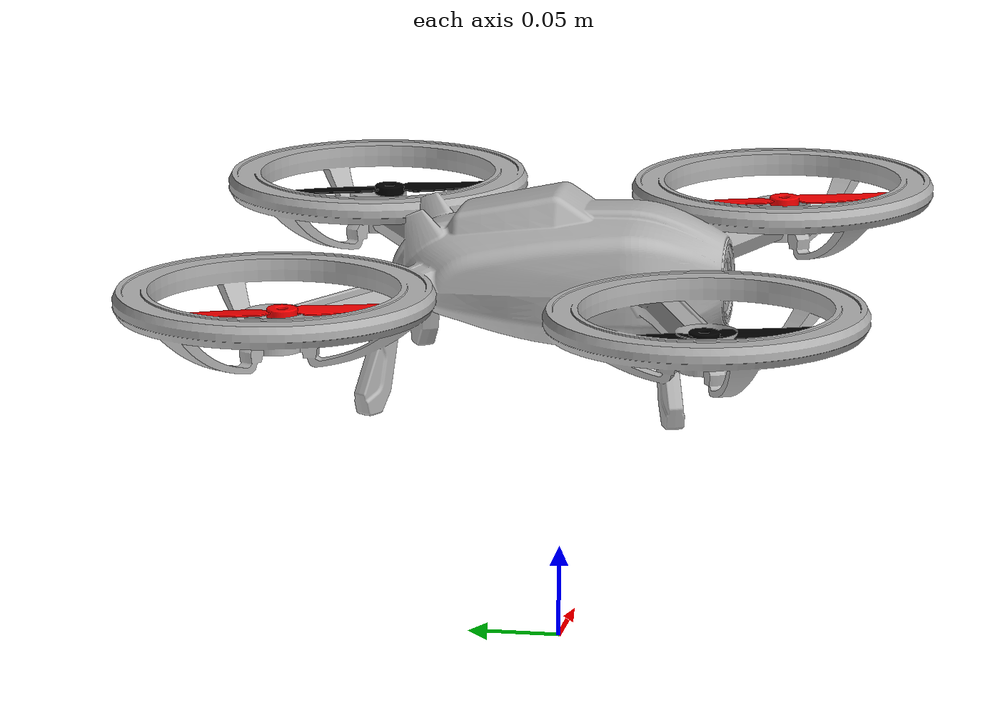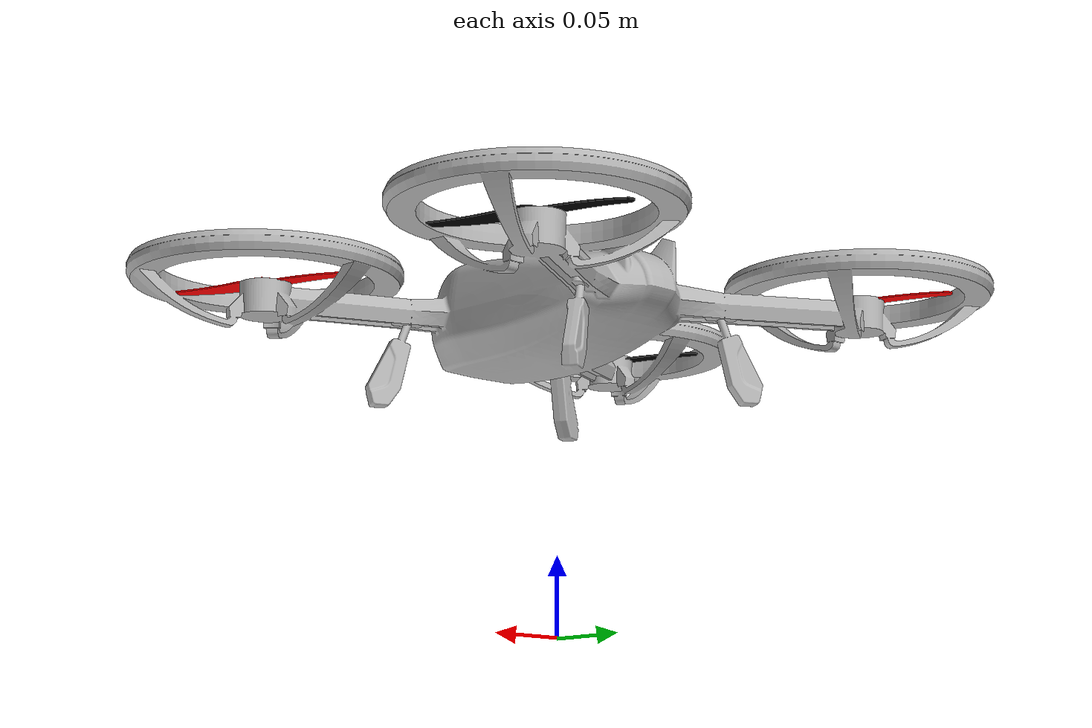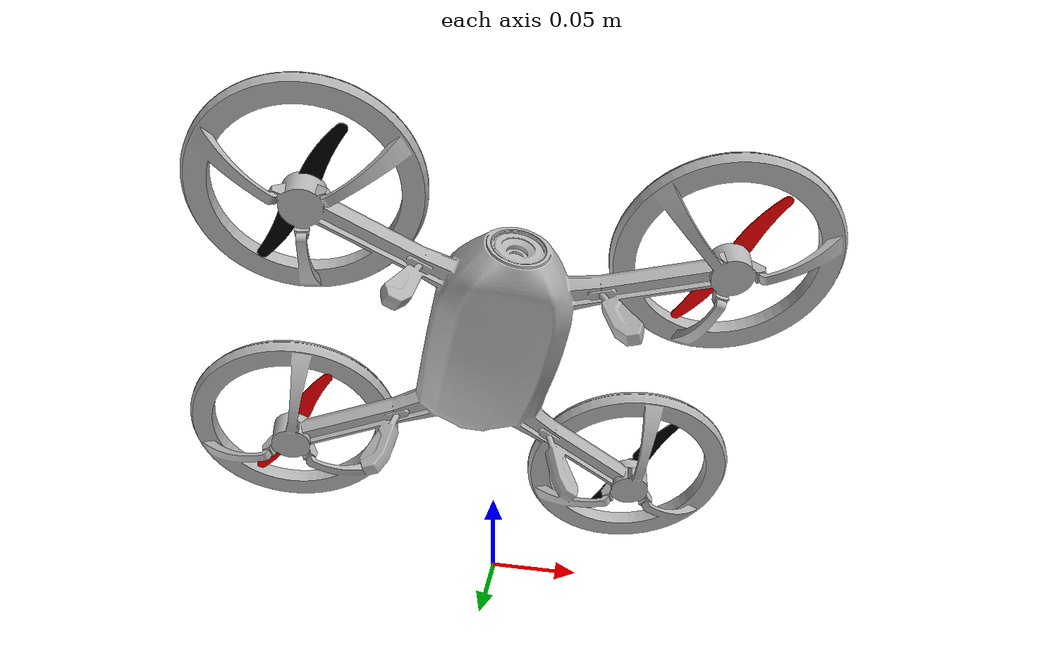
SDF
<?xml version="1.0" ?>
<sdf version="1.8">
  <model name="meu_drone_v2">

    <link name="base_link">
      <pose>0 0 0.2 0 0 0</pose>
      <inertial>
        <mass>1.5</mass>
        <inertia>
          <ixx>0.0547</ixx> <iyy>0.0558</iyy> <izz>0.0900</izz>
          <ixy>0</ixy> <ixz>0</ixz> <iyz>0</iyz>
        </inertia>
      </inertial>

      <visual name="base_link_visual">
        <pose>0 0 0 0 0 0</pose>
        <geometry>
          <mesh>
            <uri>model://meu_drone/meshes/Drone_corpo_fixed.stl</uri>
            <scale>0.001 0.001 0.001</scale>
          </mesh>
        </geometry>
      </visual>

      <collision name="base_link_collision">
        <pose>0 0 0 0 0 0</pose>
        <geometry>
          <mesh>
            <uri>model://meu_drone/meshes/Drone_corpo_fixed.stl</uri>
            <scale>0.001 0.001 0.001</scale>
          </mesh>
        </geometry>
      </collision>
    </link>

    <link name="rotor_0">
      <pose>0.15 -0.10 0.21 0 0 0</pose> <inertial>
        <mass>0.005</mass>
        <inertia><ixx>0.0001</ixx> <iyy>0.0001</iyy> <izz>0.0001</izz></inertia>
      </inertial>
      <visual name="rotor_0_visual">
        <pose>0 0 0 0 0 0</pose> <geometry>
          <mesh>
            <uri>model://meu_drone/meshes/helice.STL</uri>
            <scale>0.001 0.001 0.001</scale>
          </mesh>
        </geometry>
        <material><ambient>1 0 0 1</ambient></material> </visual>
      <collision name="rotor_0_collision">
         <geometry><cylinder><radius>0.06</radius><length>0.01</length></cylinder></geometry>
      </collision>
    </link>

    <joint name="rotor_0_joint" type="revolute">
      <parent>base_link</parent>
      <child>rotor_0</child>
      <axis>
        <xyz>0 0 1</xyz>
        <limit><lower>-1e16</lower> <upper>1e16</upper></limit>
      </axis>
    </joint>

    <link name="rotor_1">
      <pose>-0.14 0.12 0.21 0 0 0</pose>
      <inertial>
        <mass>0.005</mass>
        <inertia><ixx>0.0001</ixx> <iyy>0.0001</iyy> <izz>0.0001</izz></inertia>
      </inertial>
      <visual name="rotor_1_visual">
        <pose>0 0 0 0 0 0</pose>
        <geometry>
          <mesh>
            <uri>model://meu_drone/meshes/helice.STL</uri>
            <scale>0.001 0.001 0.001</scale>
          </mesh>
        </geometry>
        <material><ambient>1 0 0 1</ambient></material> </visual>
      <collision name="rotor_1_collision">
         <geometry><cylinder><radius>0.06</radius><length>0.01</length></cylinder></geometry>
      </collision>
    </link>

    <joint name="rotor_1_joint" type="revolute">
      <parent>base_link</parent>
      <child>rotor_1</child>
      <axis>
        <xyz>0 0 1</xyz>
        <limit><lower>-1e16</lower> <upper>1e16</upper></limit>
      </axis>
    </joint>

    <link name="rotor_2">
      <pose>0.14 0.12 0.21 0 0 0</pose>
      <inertial>
        <mass>0.005</mass>
        <inertia><ixx>0.0001</ixx> <iyy>0.0001</iyy> <izz>0.0001</izz></inertia>
      </inertial>
      <visual name="rotor_2_visual">
        <pose>0 0 0 0 0 0</pose>
        <geometry>
          <mesh>
            <uri>model://meu_drone/meshes/helice.STL</uri>
            <scale>0.001 0.001 0.001</scale>
          </mesh>
        </geometry>
        <material><ambient>0 0 0 1</ambient></material> </visual>
      <collision name="rotor_2_collision">
         <geometry><cylinder><radius>0.06</radius><length>0.01</length></cylinder></geometry>
      </collision>
    </link>

    <joint name="rotor_2_joint" type="revolute">
      <parent>base_link</parent>
      <child>rotor_2</child>
      <axis>
        <xyz>0 0 1</xyz>
        <limit><lower>-1e16</lower> <upper>1e16</upper></limit>
      </axis>
    </joint>

    <link name="rotor_3">
      <pose>-0.15 -0.10 0.21 0 0 0</pose>
      <inertial>
        <mass>0.005</mass>
        <inertia><ixx>0.0001</ixx> <iyy>0.0001</iyy> <izz>0.0001</izz></inertia>
      </inertial>
      <visual name="rotor_3_visual">
        <pose>0 0 0 0 0 0</pose>
        <geometry>
          <mesh>
            <uri>model://meu_drone/meshes/helice.STL</uri>
            <scale>0.001 0.001 0.001</scale>
          </mesh>
        </geometry>
        <material><ambient>0 0 0 1</ambient></material> </visual>
      <collision name="rotor_3_collision">
         <geometry><cylinder><radius>0.06</radius><length>0.01</length></cylinder></geometry>
      </collision>
    </link>

    <joint name="rotor_3_joint" type="revolute">
      <parent>base_link</parent>
      <child>rotor_3</child>
      <axis>
        <xyz>0 0 1</xyz>
        <limit><lower>-1e16</lower> <upper>1e16</upper></limit>
      </axis>
    </joint>

    <plugin
      filename="gz-sim-multicopter-control-system"
      name="gz::sim::systems::MulticopterVelocityControl">
      <robotNamespace>meu_drone</robotNamespace>
      <commandSubTopic>cmd_vel</commandSubTopic>
      <comLinkName>base_link</comLinkName>
      <velocityGain>2.7 2.7 2.7</velocityGain>
      <attitudeGain>2 3 0.15</attitudeGain>
      <angularRateGain>0.4 0.52 0.18</angularRateGain>

      <rotorConfiguration>
        <rotor>
          <jointName>rotor_0_joint</jointName>
          <forceConstant>8.54858e-06</forceConstant>
          <momentConstant>0.016</momentConstant>
          <direction>-1</direction>
        </rotor>
        <rotor>
          <jointName>rotor_1_joint</jointName>
          <forceConstant>8.54858e-06</forceConstant>
          <momentConstant>0.016</momentConstant>
          <direction>-1</direction>
        </rotor>
        <rotor>
          <jointName>rotor_2_joint</jointName>
          <forceConstant>8.54858e-06</forceConstant>
          <momentConstant>0.016</momentConstant>
          <direction>1</direction>
        </rotor>
        <rotor>
          <jointName>rotor_3_joint</jointName>
          <forceConstant>8.54858e-06</forceConstant>
          <momentConstant>0.016</momentConstant>
          <direction>1</direction>
        </rotor>
      </rotorConfiguration>
    </plugin>

    <plugin filename="gz-sim-multicopter-motor-model-system" name="gz::sim::systems::MulticopterMotorModel">
      <jointName>rotor_0_joint</jointName>
      <linkName>rotor_0</linkName>
      <actuator_number>0</actuator_number>
      <turningDirection>cw</turningDirection>
      <motorConstant>8.54858e-06</motorConstant>
      <momentConstant>0.016</momentConstant>
      <maxRotVelocity>1000</maxRotVelocity>
      <robotNamespace>meu_drone</robotNamespace>
    </plugin>

    <plugin filename="gz-sim-multicopter-motor-model-system" name="gz::sim::systems::MulticopterMotorModel">
      <jointName>rotor_1_joint</jointName>
      <linkName>rotor_1</linkName>
      <actuator_number>1</actuator_number>
      <turningDirection>cw</turningDirection>
      <motorConstant>8.54858e-06</motorConstant>
      <momentConstant>0.016</momentConstant>
      <maxRotVelocity>1000</maxRotVelocity>
      <robotNamespace>meu_drone</robotNamespace>
    </plugin>

    <plugin filename="gz-sim-multicopter-motor-model-system" name="gz::sim::systems::MulticopterMotorModel">
      <jointName>rotor_2_joint</jointName>
      <linkName>rotor_2</linkName>
      <actuator_number>2</actuator_number>
      <turningDirection>ccw</turningDirection>
      <motorConstant>8.54858e-06</motorConstant>
      <momentConstant>0.016</momentConstant>
      <maxRotVelocity>1000</maxRotVelocity>
      <robotNamespace>meu_drone</robotNamespace>
    </plugin>

    <plugin filename="gz-sim-multicopter-motor-model-system" name="gz::sim::systems::MulticopterMotorModel">
      <jointName>rotor_3_joint</jointName>
      <linkName>rotor_3</linkName>
      <actuator_number>3</actuator_number>
      <turningDirection>ccw</turningDirection>
      <motorConstant>8.54858e-06</motorConstant>
      <momentConstant>0.016</momentConstant>
      <maxRotVelocity>1000</maxRotVelocity>
      <robotNamespace>meu_drone</robotNamespace>
    </plugin>

  </model>
</sdf>
